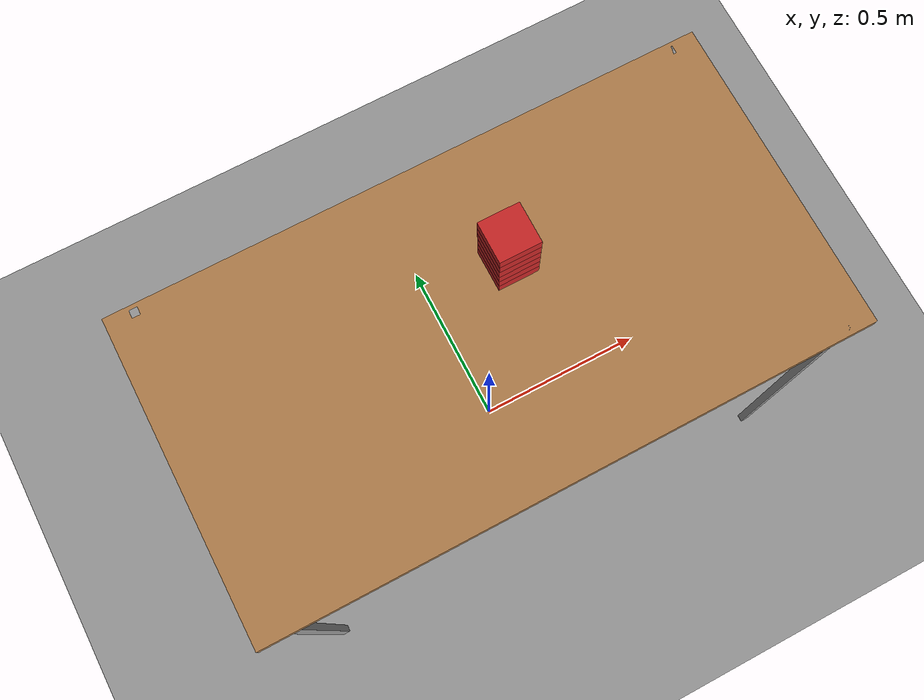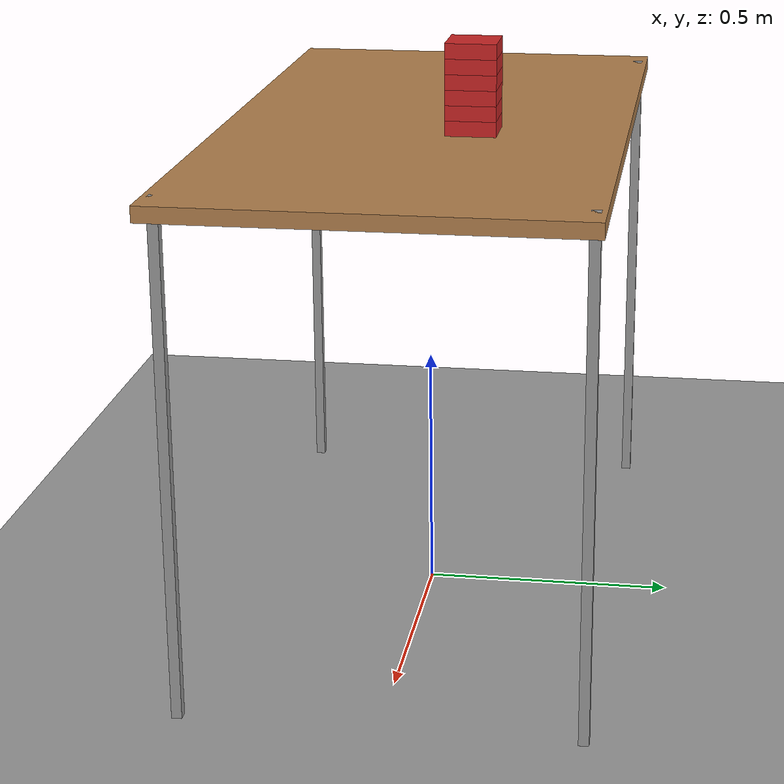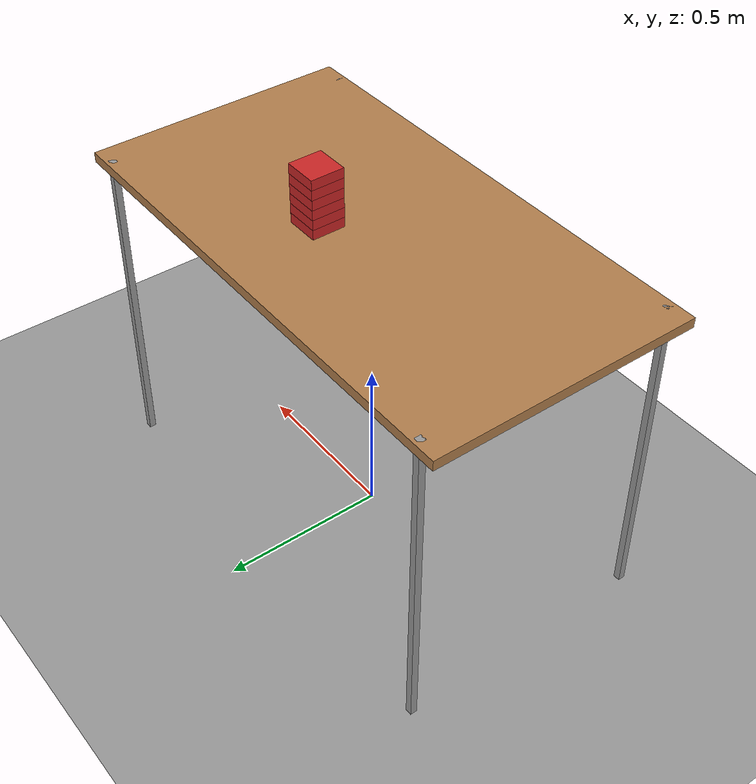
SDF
<?xml version="1.0" ?>
<sdf version="1.5">
  <world name="default">
  <physics type="ode">
    <max_step_size>0.00015</max_step_size>
    <real_time_factor>1</real_time_factor>
    <real_time_update_rate>1000</real_time_update_rate>
    <max_contacts>10000</max_contacts>
    <simbody>
      <min_step_size>0.0001</min_step_size>
      <accuracy>0.001</accuracy>
      <max_transient_velocity>0.01</max_transient_velocity>
      <contact>
        <stiffness>1e8</stiffness>
        <dissipation>100</dissipation>
        <plastic_coef_restitution>0.5</plastic_coef_restitution>
        <plastic_impact_velocity>0.5</plastic_impact_velocity>
        <static_friction>0.1</static_friction>
        <dynamic_friction>0.1</dynamic_friction>
        <viscous_friction>0</viscous_friction>
        <override_impact_capture_velocity>0.001</override_impact_capture_velocity>
        <override_stiction_transition_velocity>0.001</override_stiction_transition_velocity>
      </contact>
    </simbody>
    <bullet>
      <solver>
        <type>sequential_impulse</type>
        <min_step_size>1e-5</min_step_size>
        <iters>50</iters>
        <sor>1.3</sor>
      </solver>
      <constraints>
        <cfm>0.0</cfm>
        <erp>0.2</erp>
        <contact_surface_layer>0.001</contact_surface_layer>
        <split_impulse>1</split_impulse>
        <split_impulse_penetration_threshold>-0.01</split_impulse_penetration_threshold>
      </constraints>
    </bullet>
    <ode>
      <solver>
        <type>quick</type>
        <min_step_size>1e-5</min_step_size>
        <iters>10000</iters>
        <sor>1.0</sor>
      </solver>
      <constraints>
        <cfm>0.0</cfm>
        <erp>0.2</erp>
        <contact_max_correcting_vel>100</contact_max_correcting_vel>
        <contact_surface_layer>0.001</contact_surface_layer>
      </constraints>
    </ode>
  </physics>

    <!-- Ground -->
    <include>
      <uri>model://ground_plane_low-mu</uri>
    </include>

    <!-- Desk -->
    <include>
      <uri>model://desk</uri>
      <pose>0 0 0 0 0 0</pose>
    </include>

    <!-- Stack of 6 books -->
    <include>
      <uri>model://book</uri>
      <pose>0.1 0.1 1.00 0 0 0</pose>
    </include>

    <include>
      <uri>model://book</uri>
      <pose>0.1 0.1 1.03 0 0 0</pose>
    </include>

    <include>
      <uri>model://book</uri>
      <pose>0.1 0.1 1.06 0 0 0</pose>
    </include>

    <include>
      <uri>model://book</uri>
      <pose>0.1 0.1 1.09 0 0 0</pose>
    </include>

    <include>
      <uri>model://book</uri>
      <pose>0.1 0.1 1.12 0 0 0</pose>
    </include>

    <include>
      <uri>model://book</uri>
      <pose>0.1 0.1 1.15 0 0 0</pose>
    </include>

    <!-- A global light source -->
    <include>
      <uri>model://sun</uri>
    </include>
  </world>
</sdf>

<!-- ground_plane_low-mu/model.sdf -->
<sdf version="1.5">
  <model name="ground_plane">
    <static>true</static>
    <link name="link">
      <collision name="collision">
        <geometry>
          <plane>
            <normal>0 0 1</normal>
            <size>100 100</size>
          </plane>
        </geometry>
        <surface>
          <friction>
            <ode>
              <mu>0.1</mu>
              <mu2>0.1</mu2>
            </ode>
          </friction>
        </surface>
      </collision>
      <visual name="visual">
        <cast_shadows>false</cast_shadows>
        <geometry>
          <plane>
            <normal>0 0 1</normal>
            <size>100 100</size>
          </plane>
        </geometry>
        <material>
          <script>
            <uri>file://media/materials/scripts/gazebo.material</uri>
            <name>Gazebo/Grey</name>
          </script>
        </material>
      </visual>
    </link>
  </model>
</sdf>

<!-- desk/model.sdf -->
<sdf version="1.5">
  <model name="desk">
      <allow_auto_disable>0</allow_auto_disable>
    <static>false</static>
    <link name="link">
      <collision name="surface">
        <pose>0 0 0.985 0 0 0</pose>
        <geometry>
          <box>
            <size>1.5 0.8 0.03</size>
          </box>
        </geometry>
        <surface>
          <friction>
            <ode>
              <mu>0.6</mu>
              <mu2>0.6</mu2>
            </ode>
          </friction>
        </surface>
      </collision>
      <visual name="visual1">
        <pose>0 0 0.985 0 0 0</pose>
        <geometry>
          <box>
            <size>1.5 0.8 0.03</size>
          </box>
        </geometry>
        <material>
          <script>
            <uri>file://media/materials/scripts/gazebo.material</uri>
            <name>Gazebo/Wood</name>
          </script>
        </material>
      </visual>
      <collision name="front_left_leg">
        <pose>0.68 0.38 0.5 0 0 0</pose>
        <geometry>
          <box>
            <size>0.02 0.02 1.0</size>
          </box>
        </geometry>
      </collision>
      <visual name="front_left_leg">
        <pose>0.68 0.38 0.5 0 0 0</pose>
        <geometry>
          <box>
            <size>0.02 0.02 1.0</size>
          </box>
        </geometry>
        <material>
          <script>
            <uri>file://media/materials/scripts/gazebo.material</uri>
            <name>Gazebo/Grey</name>
          </script>
        </material>
      </visual>
      <collision name="front_right_leg">
        <pose>0.68 -0.38 0.5 0 0 0</pose>
        <geometry>
          <box>
            <size>0.02 0.02 1.0</size>
          </box>
        </geometry>
      </collision>
      <visual name="front_right_leg">
        <pose>0.68 -0.38 0.5 0 0 0</pose>
        <geometry>
          <box>
            <size>0.02 0.02 1.0</size>
          </box>
        </geometry>
        <material>
          <script>
            <uri>file://media/materials/scripts/gazebo.material</uri>
            <name>Gazebo/Grey</name>
          </script>
        </material>
      </visual>
      <collision name="back_right_leg">
        <pose>-0.68 -0.38 0.5 0 0 0</pose>
        <geometry>
          <box>
            <size>0.02 0.02 1.0</size>
          </box>
        </geometry>
      </collision>
      <visual name="back_right_leg">
        <pose>-0.68 -0.38 0.5 0 0 0</pose>
        <geometry>
          <box>
            <size>0.02 0.02 1.0</size>
          </box>
        </geometry>
        <material>
          <script>
            <uri>file://media/materials/scripts/gazebo.material</uri>
            <name>Gazebo/Grey</name>
          </script>
        </material>
      </visual>
      <collision name="back_left_leg">
        <pose>-0.68 0.38 0.5 0 0 0</pose>
        <geometry>
          <box>
            <size>0.02 0.02 1.0</size>
          </box>
        </geometry>
      </collision>
      <visual name="back_left_leg">
        <pose>-0.68 0.38 0.5 0 0 0</pose>
        <geometry>
          <box>
            <size>0.02 0.02 1.0</size>
          </box>
        </geometry>
        <material>
          <script>
            <uri>file://media/materials/scripts/gazebo.material</uri>
            <name>Gazebo/Grey</name>
          </script>
        </material>
      </visual>
    </link>
  </model>
</sdf>

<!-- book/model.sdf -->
<sdf version="1.5">
  <model name="book">
      <allow_auto_disable>0</allow_auto_disable>
    <link name="base">
      <pose>0 0 0.015 0 0 0</pose>
      <inertial>
        <mass>0.1</mass>
        <inertia>
          <ixx>8.416666666e-5</ixx>
          <ixy>0</ixy>
          <ixz>0</ixz>
          <iyy>8.416666666e-5</iyy>
          <iyz>0</iyz>
          <izz>0.00016666666</izz>
        </inertia>
      </inertial>
      <self_collide>1</self_collide>
      <collision name="collision">
        <geometry>
          <box>
            <size>0.1 0.1 0.03</size>
          </box>
        </geometry>
        <surface>
          <friction>
            <ode>
              <mu>0.6</mu>
              <mu2>0.6</mu2>
            </ode>
          </friction>
        </surface>
      </collision>

      <visual name="visual">
        <geometry>
          <box>
            <size>0.1 0.1 0.03</size>
          </box>
        </geometry>
        <material>
          <script>
            <uri>file://media/materials/scripts/gazebo.material</uri>
            <name>Gazebo/Red</name>
          </script>
        </material>
      </visual>
    </link>

  </model>
</sdf>
